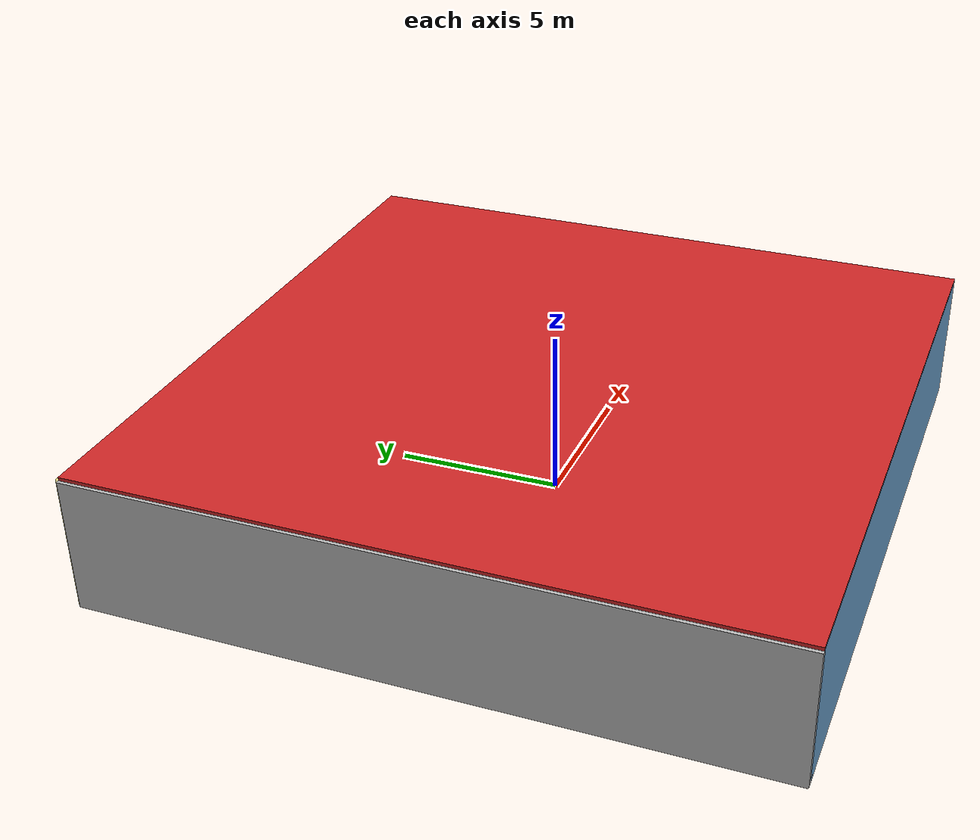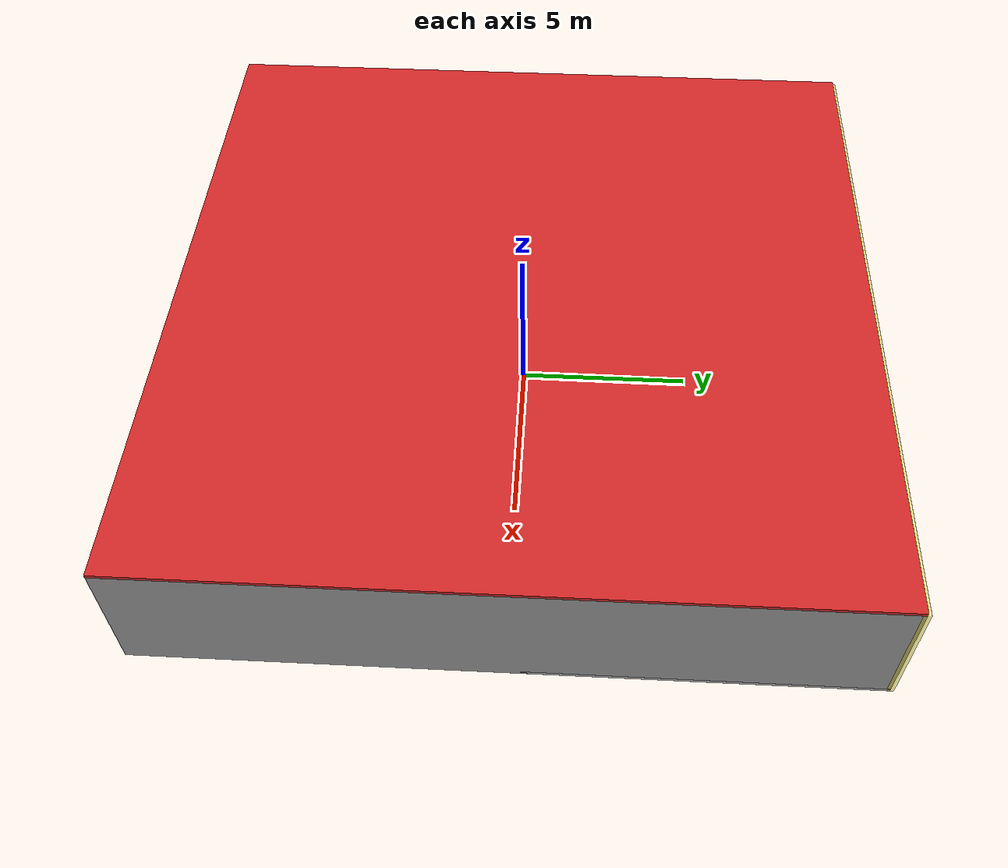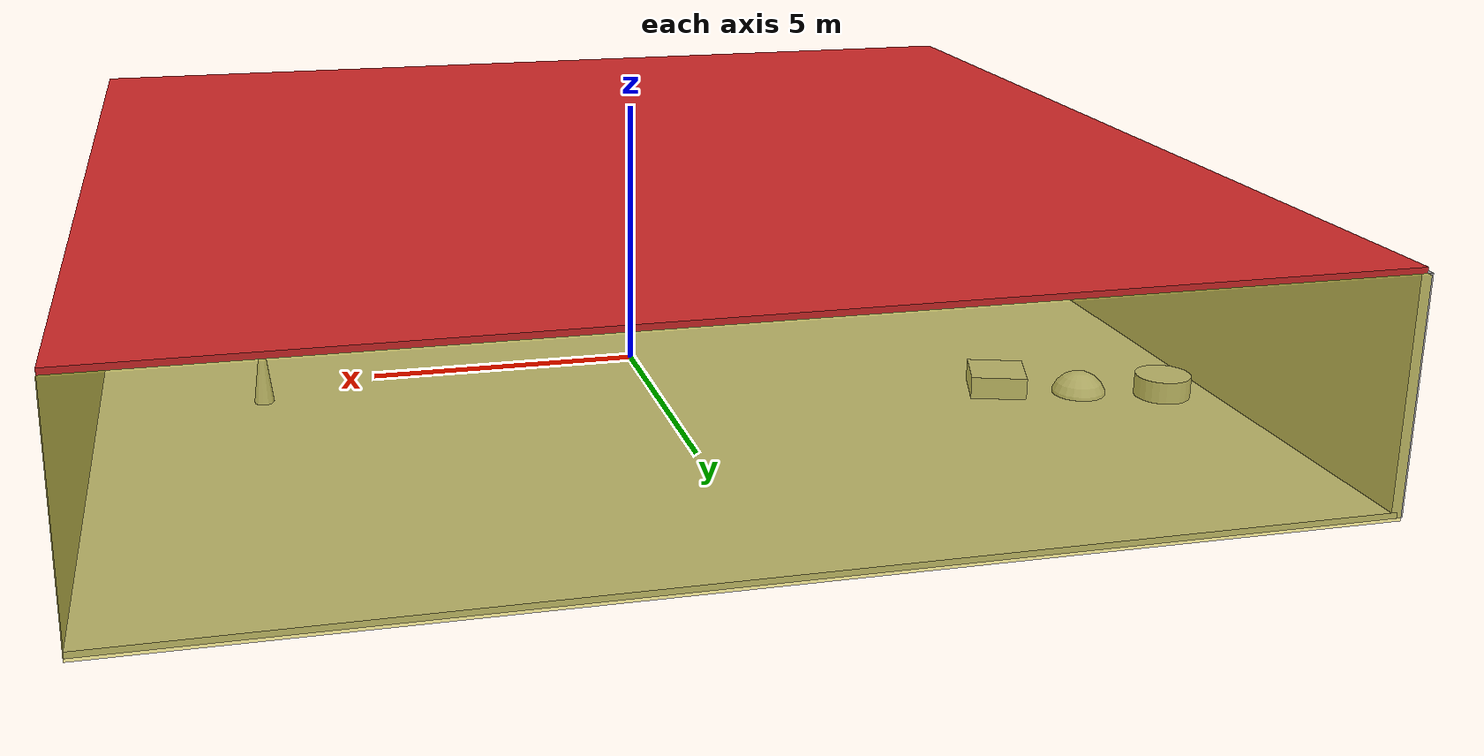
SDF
<sdf version="1.4">
 <world name="default">
  <physics type="ode">
   <max_step_size>0.001</max_step_size>
   <real_time_factor>1</real_time_factor>
   <real_time_update_rate>1000</real_time_update_rate>
   <gravity>0 0 -9.8</gravity>
  </physics>
  <scene><ambient>0.4 0.4 0.4 1</ambient><background>0.7 0.7 0.7 1</background><shadows>1</shadows></scene>
  <model name="Surrounding">
   <static>1</static>
   <link name="Ceiling">
    <collision name="Ceiling_Collision"><geometry><box><size>20 20 0.1</size></box></geometry></collision>
    <visual name="Ceiling_Visual">
     <geometry><box><size>20 20 0.1</size></box></geometry>
     <material>
      <script><uri>file://media/materials/scripts/gazebo.material</uri><name>Gazebo/RedBright</name></script>
     </material>
    </visual>
    <pose>0 0 4.05 0 0 0</pose>
   </link>
   <link name="Wall_South">
    <collision name="Wall_South_Collision">
     <geometry><box><size>20 0 4</size></box></geometry>
     <pose>0 0 2 0 -0 0</pose>
    </collision>
    <visual name="Wall_South_Visual">
     <pose>0 0 2 0 -0 0</pose>
     <geometry><box><size>20 0 4</size></box></geometry>
     <material>
      <script><uri>file://media/materials/scripts/gazebo.material</uri><name>Gazebo/SkyBlue</name></script>
     </material>
    </visual>
    <velocity_decay><linear>0</linear><angular>0</angular></velocity_decay>
    <pose>0 -10 0 0 -0 0</pose>
   </link>
   <link name="Wall_East">
    <collision name="Wall_21_Collision">
     <geometry><box><size>20 0 4</size></box></geometry>
     <pose>0 0 2 0 -0 0</pose>
    </collision>
    <visual name="Wall_21_Visual">
     <pose>0 0 2 0 -0 0</pose>
     <geometry><box><size>20 0 4</size></box></geometry>
     <material>
      <script><uri>file://media/materials/scripts/gazebo.material</uri><name>Gazebo/Grey</name></script>
     </material>
    </visual>
    <velocity_decay><linear>0</linear><angular>0</angular></velocity_decay>
    <pose>10 0 0 0 -0 1.5708</pose>
   </link>
   <link name="Wall_North">
    <collision name="Wall_22_Collision">
     <geometry><box><size>20 0.2 4</size></box></geometry>
     <pose>0 0 2 0 -0 0</pose>
    </collision>
    <visual name="Wall_22_Visual">
     <pose>0 0 2 0 -0 0</pose>
     <geometry><box><size>20 0.2 4</size></box></geometry>
     <material>
      <script>
       <uri>file://media/materials/scripts/gazebo.material</uri>
       <name>Gazebo/YellowTransparent</name>
      </script>
     </material>
    </visual>
    <velocity_decay><linear>0</linear><angular>0</angular></velocity_decay>
    <pose>0 10 0 0 -0 0</pose>
   </link>
   <link name="Wall_West">
    <collision name="Wall_23_Collision">
     <geometry><box><size>20 0.2 4</size></box></geometry>
     <pose>0 0 2 0 -0 0</pose>
    </collision>
    <visual name="Wall_23_Visual">
     <pose>0 0 2 0 -0 0</pose>
     <geometry><box><size>20 0.2 4</size></box></geometry>
     <material>
      <script><uri>file://media/materials/scripts/gazebo.material</uri><name>Gazebo/LightOn</name></script>
     </material>
    </visual>
    <velocity_decay><linear>0</linear><angular>0</angular></velocity_decay>
    <pose>-10 0 0 0 0 -1.5708</pose>
   </link>
   <link name="Ground_link">
    <collision name="collision">
     <pose>0 0 .05 0 -0 0</pose>
     <geometry><box><size>20 20 0.1</size></box></geometry>
    </collision>
    <visual name="visual">
     <pose>0 0 .05 0 -0 0</pose>
     <geometry><box><size>20 20 0.1</size></box></geometry>
     <material>
      <script><uri>file://media/materials/scripts/gazebo.material</uri><name>Gazebo/LightOn</name></script>
     </material>
    </visual>
   </link>
   <static>1</static>
  </model>
  <spherical_coordinates>
   <surface_model>EARTH_WGS84</surface_model>
   <latitude_deg>0</latitude_deg>
   <longitude_deg>0</longitude_deg>
   <elevation>0</elevation>
   <heading_deg>0</heading_deg>
  </spherical_coordinates>
  <light name="lightball_0" type="diffuse">
   <diffuse>0.8 0.8 0.8 1</diffuse>
   <specular>0.2 0.2 0.2 1</specular>
   <attenuation>
    <range>100</range>
    <constant>0.7</constant>
    <linear>0.01</linear>
    <quadratic>0.001</quadratic>
   </attenuation>
   <direction>-0.5 0.1 -0.9</direction>
   <pose>-3.48349650472 -7.92777528377 3.64262916701 0 0 0</pose>
  </light>
  <light name="lightball_1" type="diffuse">
   <diffuse>0.8 0.8 0.8 1</diffuse>
   <specular>0.2 0.2 0.2 1</specular>
   <attenuation>
    <range>100</range>
    <constant>0.7</constant>
    <linear>0.01</linear>
    <quadratic>0.001</quadratic>
   </attenuation>
   <direction>-0.5 0.1 -0.9</direction>
   <pose>-9.42062349116 5.25618268719 1.76927871281 0 0 0</pose>
  </light>
  <light name="lightball_2" type="diffuse">
   <diffuse>0.8 0.8 0.8 1</diffuse>
   <specular>0.2 0.2 0.2 1</specular>
   <attenuation>
    <range>100</range>
    <constant>0.7</constant>
    <linear>0.01</linear>
    <quadratic>0.001</quadratic>
   </attenuation>
   <direction>-0.5 0.1 -0.9</direction>
   <pose>8.57182145647 -6.86732200584 3.81746130032 0 0 0</pose>
  </light>
  <light name="lightball_3" type="diffuse">
   <diffuse>0.8 0.8 0.8 1</diffuse>
   <specular>0.2 0.2 0.2 1</specular>
   <attenuation>
    <range>100</range>
    <constant>0.7</constant>
    <linear>0.01</linear>
    <quadratic>0.001</quadratic>
   </attenuation>
   <direction>-0.5 0.1 -0.9</direction>
   <pose>-4.08534658862 -7.12665563418 1.76411951293 0 0 0</pose>
  </light>
  <light name="lightball_4" type="diffuse">
   <diffuse>0.8 0.8 0.8 1</diffuse>
   <specular>0.2 0.2 0.2 1</specular>
   <attenuation>
    <range>100</range>
    <constant>0.7</constant>
    <linear>0.01</linear>
    <quadratic>0.001</quadratic>
   </attenuation>
   <direction>-0.5 0.1 -0.9</direction>
   <pose>-2.80421516653 5.38356971936 2.31223902634 0 0 0</pose>
  </light>
  <include><uri>model://table</uri><pose>-6.80729730986 -4.14850243318 0 0 0 0.75046056139</pose></include>
  <include>
   <uri>model://textured_shapes</uri>
   <pose>-7.54627716935 3.9776078461 0 0 0 1.25680977106</pose>
  </include>
  <include><uri>model://cabinet</uri><pose>5.27539564957 -6.90373190825 0 0 0 2.56870853497</pose></include>
  <include>
   <uri>model://construction_cone</uri>
   <pose>7.0906352546 1.14768095074 0 0 0 0.390128110063</pose>
  </include>
 </world>
</sdf>

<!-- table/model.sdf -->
<sdf version="1.5">
  <model name="table">
    <static>true</static>
    <link name="link">
      <collision name="surface">
        <pose>0 0 1.0 0 0 0</pose>
        <geometry>
          <box>
            <size>1.5 0.8 0.03</size>
          </box>
        </geometry>
        <surface>
          <friction>
            <ode>
              <mu>0.6</mu>
              <mu2>0.6</mu2>
            </ode>
          </friction>
        </surface>
      </collision>
      <visual name="visual1">
        <pose>0 0 1.0 0 0 0</pose>
        <geometry>
          <box>
            <size>1.5 0.8 0.03</size>
          </box>
        </geometry>
        <material>
          <script>
            <uri>model://media/materials/scripts/gazebo.material</uri>
            <name>Gazebo/Wood</name>
          </script>
        </material>
      </visual>
      <collision name="front_left_leg">
        <pose>0.68 0.38 0.5 0 0 0</pose>
        <geometry>
          <cylinder>
            <radius>0.02</radius>
            <length>1.0</length>
          </cylinder>
        </geometry>
      </collision>
      <visual name="front_left_leg">
        <pose>0.68 0.38 0.5 0 0 0</pose>
        <geometry>
          <cylinder>
            <radius>0.02</radius>
            <length>1.0</length>
          </cylinder>
        </geometry>
        <material>
          <script>
            <uri>model://media/materials/scripts/gazebo.material</uri>
            <name>Gazebo/Grey</name>
          </script>
        </material>
      </visual>
      <collision name="front_right_leg">
        <pose>0.68 -0.38 0.5 0 0 0</pose>
        <geometry>
          <cylinder>
            <radius>0.02</radius>
            <length>1.0</length>
          </cylinder>
        </geometry>
      </collision>
      <visual name="front_right_leg">
        <pose>0.68 -0.38 0.5 0 0 0</pose>
        <geometry>
          <cylinder>
            <radius>0.02</radius>
            <length>1.0</length>
          </cylinder>
        </geometry>
        <material>
          <script>
            <uri>model://media/materials/scripts/gazebo.material</uri>
            <name>Gazebo/Grey</name>
          </script>
        </material>
      </visual>
      <collision name="back_right_leg">
        <pose>-0.68 -0.38 0.5 0 0 0</pose>
        <geometry>
          <cylinder>
            <radius>0.02</radius>
            <length>1.0</length>
          </cylinder>
        </geometry>
      </collision>
      <visual name="back_right_leg">
        <pose>-0.68 -0.38 0.5 0 0 0</pose>
        <geometry>
          <cylinder>
            <radius>0.02</radius>
            <length>1.0</length>
          </cylinder>
        </geometry>
        <material>
          <script>
            <uri>model://media/materials/scripts/gazebo.material</uri>
            <name>Gazebo/Grey</name>
          </script>
        </material>
      </visual>
      <collision name="back_left_leg">
        <pose>-0.68 0.38 0.5 0 0 0</pose>
        <geometry>
          <cylinder>
            <radius>0.02</radius>
            <length>1.0</length>
          </cylinder>
        </geometry>
      </collision>
      <visual name="back_left_leg">
        <pose>-0.68 0.38 0.5 0 0 0</pose>
        <geometry>
          <cylinder>
            <radius>0.02</radius>
            <length>1.0</length>
          </cylinder>
        </geometry>
        <material>
          <script>
            <uri>model://media/materials/scripts/gazebo.material</uri>
            <name>Gazebo/Grey</name>
          </script>
        </material>
      </visual>
    </link>
  </model>
</sdf>

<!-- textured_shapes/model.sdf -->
<sdf version="1.6">
  <model name="textured_shapes">
    <pose>0 0 0.5 0 0 0</pose>
    <link name="box">
      <pose>0 -1.5 0 0 0 0</pose>
      <collision name="collision">
        <geometry>
          <box>
            <size>1 1 1</size>
          </box>
        </geometry>
      </collision>
      <visual name="visual">
        <geometry>
          <box>
            <size>1 1 1</size>
          </box>
        </geometry>
        <material>
          <script>
            <uri>model://../model_source/models/textured_shapes/materials/scripts</uri>
            <uri>model://../model_source/models/textured_shapes/materials/textures</uri>
            <name>TexturedShape/Squares</name>
          </script>
        </material>
      </visual>
    </link>
    <link name="sphere">
      <collision name="collision">
        <geometry>
          <sphere>
            <radius>0.5</radius>
          </sphere>
        </geometry>
      </collision>
      <visual name="visual">
        <geometry>
          <sphere>
            <radius>0.5</radius>
          </sphere>
        </geometry>
        <material>
          <script>
            <uri>model://../model_source/models/textured_shapes/materials/scripts</uri>
            <uri>model://../model_source/models/textured_shapes/materials/textures</uri>
            <name>TexturedShape/Squares</name>
          </script>
        </material>
      </visual>
    </link>
    <link name="cylinder">
      <pose>0 1.5 0 0 0 0</pose>
      <collision name="collision">
        <geometry>
          <cylinder>
            <radius>0.5</radius>
            <length>1</length>
          </cylinder>
        </geometry>
      </collision>
      <visual name="visual">
        <geometry>
          <cylinder>
            <radius>0.5</radius>
            <length>1</length>
          </cylinder>
        </geometry>
        <material>
          <script>
            <uri>model://../model_source/models/textured_shapes/materials/scripts</uri>
            <uri>model://../model_source/models/textured_shapes/materials/textures</uri>
            <name>TexturedShape/Squares</name>
          </script>
        </material>
      </visual>
    </link>
  </model>
</sdf>

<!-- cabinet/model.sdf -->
<sdf version="1.5">
  <model name="cabinet">
    <static>true</static>
    <link name="cabinet_bottom_plate">
      <inertial>
        <pose>0 0 -1 0 0 0</pose>
        <inertia>
          <ixx>2.050000</ixx>
          <ixy>0</ixy>
          <ixz>0</ixz>
          <iyy>2.050000</iyy>
          <iyz>0</iyz>
          <izz>2.050000</izz>
        </inertia>
        <mass>25.000000</mass>
      </inertial>
      <collision name="cabinet_bottom_plate_geom">
        <pose>0 0 0.010000 0 0 0</pose>
        <geometry>
          <box>
            <size>0.450000 0.450000 0.020000</size>
          </box>
        </geometry>
      </collision>
      <visual name="cabinet_bottom_plate_geom_visual">
        <pose>0 0 0.010000 0 0 0</pose>
        <geometry>
          <box>
            <size>0.450000 0.450000 0.020000</size>
          </box>
        </geometry>
        <material>
          <script>
            <uri>model://media/materials/scripts/gazebo.material</uri>
            <name>Gazebo/Wood</name>
          </script>
        </material>
      </visual>
      <collision name="cabinet_bottom_plate_geom_cabinet_back_plate">
        <pose>0.235000 0 0.510000 0 0 0</pose>
        <geometry>
          <box>
            <size>0.020000 0.450000 1.020000</size>
          </box>
        </geometry>
      </collision>
      <visual name="cabinet_bottom_plate_geom_cabinet_back_plate_visual">
        <pose>0.235000 0 0.510000 0 0 0</pose>
        <geometry>
          <box>
            <size>0.020000 0.450000 1.020000</size>
          </box>
        </geometry>
        <material>
          <script>
            <uri>model://media/materials/scripts/gazebo.material</uri>
            <name>Gazebo/Wood</name>
          </script>
        </material>
      </visual>
      <collision name="cabinet_bottom_plate_geom_cabinet_left_plate">
        <pose>0 0.235000 0.510000 0 0 0</pose>
        <geometry>
          <box>
            <size>0.450000 0.020000 1.020000</size>
          </box>
        </geometry>
      </collision>
      <visual name="cabinet_bottom_plate_geom_cabinet_left_plate_visual">
        <pose>0 0.235000 0.510000 0 0 0</pose>
        <geometry>
          <box>
            <size>0.450000 0.020000 1.020000</size>
          </box>
        </geometry>
        <material>
          <script>
            <uri>model://media/materials/scripts/gazebo.material</uri>
            <name>Gazebo/Wood</name>
          </script>
        </material>
      </visual>
      <collision name="cabinet_bottom_plate_geom_cabinet_middle_plate">
        <pose>0 0 0.510000 0 0 0</pose>
        <geometry>
          <box>
            <size>0.450000 0.450000 0.020000</size>
          </box>
        </geometry>
      </collision>
      <visual name="cabinet_bottom_plate_geom_cabinet_middle_plate_visual">
        <pose>0 0 0.510000 0 0 0</pose>
        <geometry>
          <box>
            <size>0.450000 0.450000 0.020000</size>
          </box>
        </geometry>
        <material>
          <script>
            <uri>model://media/materials/scripts/gazebo.material</uri>
            <name>Gazebo/Wood</name>
          </script>
        </material>
      </visual>
      <collision name="cabinet_bottom_plate_geom_cabinet_right_plate">
        <pose>0 -0.235000 0.510000 0 0 0</pose>
        <geometry>
          <box>
            <size>0.450000 0.020000 1.020000</size>
          </box>
        </geometry>
      </collision>
      <visual name="cabinet_bottom_plate_geom_cabinet_right_plate_visual">
        <pose>0 -0.235000 0.510000 0 0 0</pose>
        <geometry>
          <box>
            <size>0.450000 0.020000 1.020000</size>
          </box>
        </geometry>
        <material>
          <script>
            <uri>model://media/materials/scripts/gazebo.material</uri>
            <name>Gazebo/Wood</name>
          </script>
        </material>
      </visual>
      <collision name="cabinet_bottom_plate_geom_cabinet_top_plate">
        <pose>0 0 1.010000 0 0 0</pose>
        <geometry>
          <box>
            <size>0.450000 0.450000 0.020000</size>
          </box>
        </geometry>
      </collision>
      <visual name="cabinet_bottom_plate_geom_cabinet_top_plate_visual">
        <pose>0 0 1.010000 0 0 0</pose>
        <geometry>
          <box>
            <size>0.450000 0.450000 0.020000</size>
          </box>
        </geometry>
        <material>
          <script>
            <uri>model://media/materials/scripts/gazebo.material</uri>
            <name>Gazebo/Wood</name>
          </script>
        </material>
      </visual>
    </link>
  </model>
</sdf>

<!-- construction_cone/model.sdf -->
<sdf version="1.5">
  <model name="Construction Cone">
    <link name="link">
      <collision name="collision">
        <geometry>
          <mesh>
            <scale>10 10 10</scale>
            <uri>file://isr-testbed/construction_cone/meshes/construction_cone.dae</uri>
          </mesh>
        </geometry>
      </collision>
      <visual name="visual">
        <geometry>
          <mesh>
            <scale>10 10 10</scale>
            <uri>file://isr-testbed/construction_cone/meshes/construction_cone.dae</uri>
          </mesh>
        </geometry>
      </visual>
    </link>
  </model>
</sdf>
